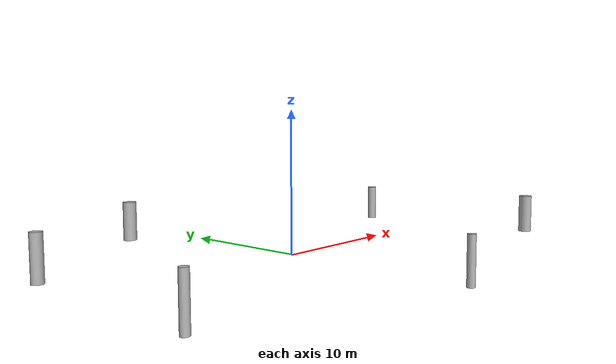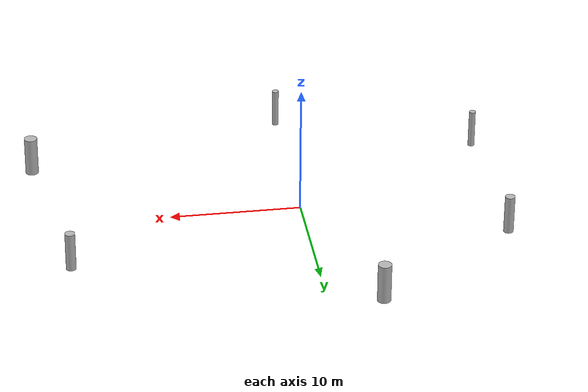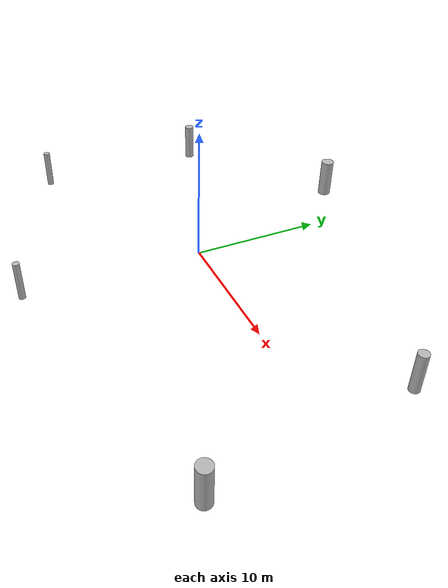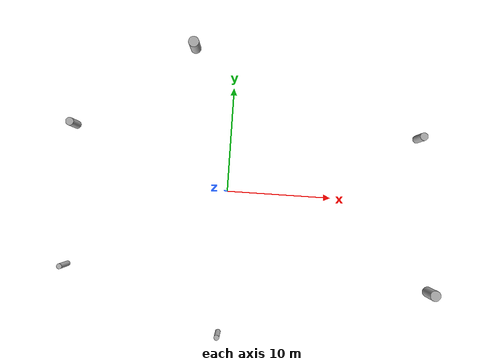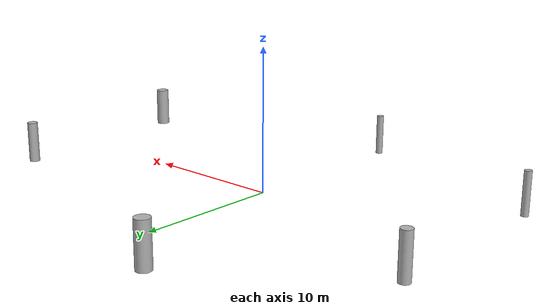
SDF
<?xml version="1.0"?>
<sdf version="1.5">
    <model name="cylinder">
        <static>true</static>
        <link name="link">
            <collision name="collision1">
                <pose>20 -8.4 0 0 0 0</pose>
                <geometry>
                    <mesh>
                        <uri>model://cylinder/meshes/cylinder_1.stl</uri>
                    </mesh>
                </geometry>
            </collision>
            <visual name="visual1">

              <pose>20 -8.4 0 0 0 0</pose>
              <geometry>
              <mesh>
                 <uri>model://cylinder/meshes/cylinder_1.dae</uri>
              </mesh>
              </geometry>

              <material>
                  <script>
                      <uri>model://cylinder/materials/scripts</uri>
                      <uri>model://cylinder/materials/textures</uri>
                      <name>cylinderMat/Diffuse</name>
                  </script>
              </material>
             </visual>

             <collision name="collision2">
                <pose>-4 13.7 0 0 0 0</pose>
                <geometry>
                    <mesh>
                        <uri>model://cylinder/meshes/cylinder_1.stl</uri>
                    </mesh>
                </geometry>
            </collision>
            <visual name="visual2">

              <pose>-4 13.7 0 0 0 0</pose>
              <geometry>
              <mesh>
                 <uri>model://cylinder/meshes/cylinder_1.dae</uri>
              </mesh>
              </geometry>

              <material>
                  <script>
                      <uri>model://cylinder/materials/scripts</uri>
                      <uri>model://cylinder/materials/textures</uri>
                      <name>cylinderMat/Diffuse</name>
                  </script>
              </material>
             </visual>

             <collision name="collision3">
                <pose>-15 -8 0 0 0 0</pose>
                <geometry>
                    <mesh>
                        <uri>model://cylinder/meshes/cylinder_0_5.stl</uri>
                    </mesh>
                </geometry>
            </collision>
            <visual name="visual3">

              <pose>-15 -8 0 0 0 0</pose>
              <geometry>
              <mesh>
                 <uri>model://cylinder/meshes/cylinder_0_5.dae</uri>
              </mesh>
              </geometry>

              <material>
                  <script>
                      <uri>model://cylinder/materials/scripts</uri>
                      <uri>model://cylinder/materials/textures</uri>
                      <name>cylinderMat/Diffuse</name>
                  </script>
              </material>
             </visual>

             <collision name="collision4">
                <pose>0 -13.6 0 0 0 0</pose>
                <geometry>
                    <mesh>
                        <uri>model://cylinder/meshes/cylinder_0_5.stl</uri>
                    </mesh>
                </geometry>
            </collision>
            <visual name="visual4">

              <pose>0 -13.6 0 0 0 0</pose>
              <geometry>
              <mesh>
                 <uri>model://cylinder/meshes/cylinder_0_5.dae</uri>
              </mesh>
              </geometry>

              <material>
                  <script>
                      <uri>model://cylinder/materials/scripts</uri>
                      <uri>model://cylinder/materials/textures</uri>
                      <name>cylinderMat/Diffuse</name>
                  </script>
              </material>
             </visual>

             <collision name="collision5">
                <pose>18 6.3 0 0 0 0</pose>
                <geometry>
                    <mesh>
                        <uri>model://cylinder/meshes/cylinder_0_75.stl</uri>
                    </mesh>
                </geometry>
            </collision>
            <visual name="visual5">

              <pose>18 6.3 0 0 0 0</pose>
              <geometry>
              <mesh>
                 <uri>model://cylinder/meshes/cylinder_0_75.dae</uri>
              </mesh>
              </geometry>

              <material>
                  <script>
                      <uri>model://cylinder/materials/scripts</uri>
                      <uri>model://cylinder/materials/textures</uri>
                      <name>cylinderMat/Diffuse</name>
                  </script>
              </material>
             </visual>

             <collision name="collision6">
                <pose>-15 5.5 0 0 0 0</pose>
                <geometry>
                    <mesh>
                        <uri>model://cylinder/meshes/cylinder_0_75.stl</uri>
                    </mesh>
                </geometry>
            </collision>
            <visual name="visual6">

              <pose>-15 5.5 0 0 0 0</pose>
              <geometry>
              <mesh>
                 <uri>model://cylinder/meshes/cylinder_0_75.dae</uri>
              </mesh>
              </geometry>

              <material>
                  <script>
                      <uri>model://cylinder/materials/scripts</uri>
                      <uri>model://cylinder/materials/textures</uri>
                      <name>cylinderMat/Diffuse</name>
                  </script>
              </material>
             </visual>

        </link>
    </model>
</sdf>
